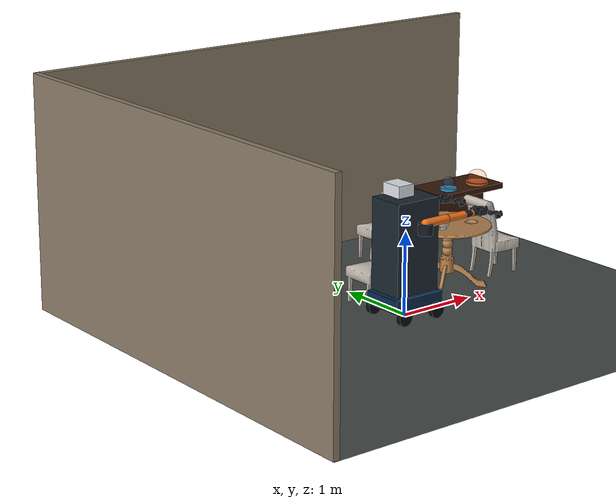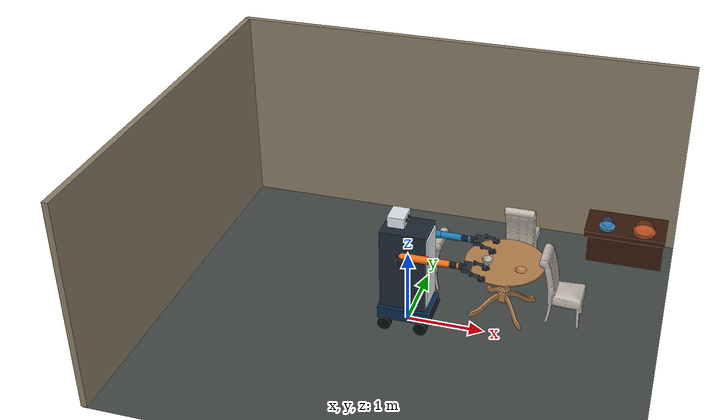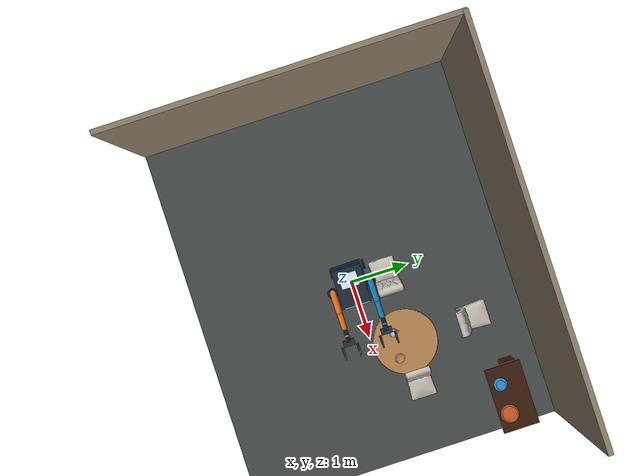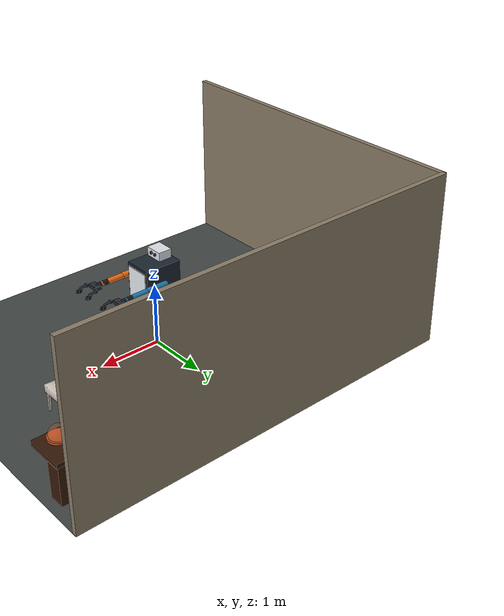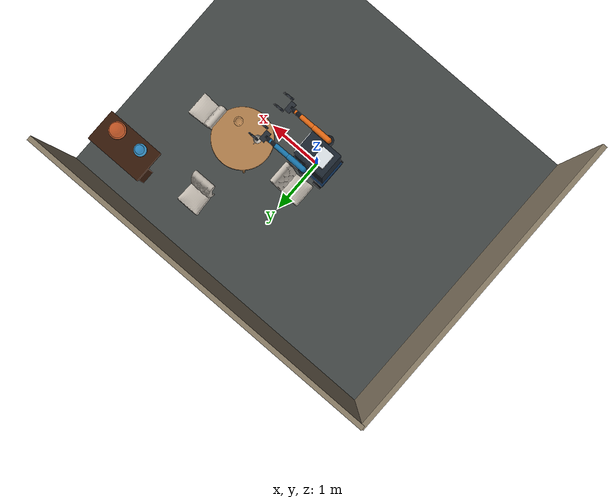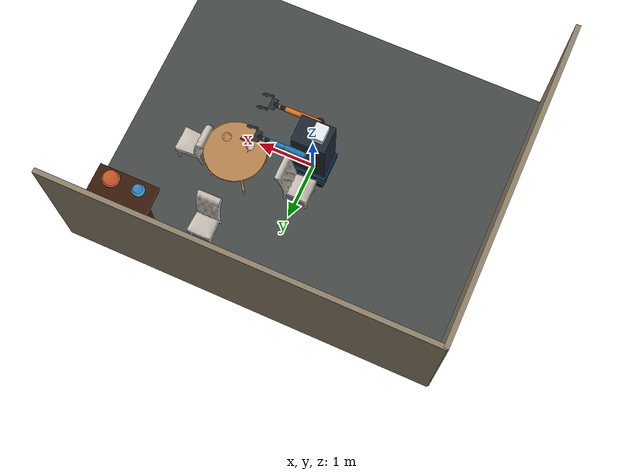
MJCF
<mujoco model="hwr_dining_room_v1">
  <compiler angle="radian" autolimits="true" inertiafromgeom="true" meshdir="../../household_v1" texturedir="../../household_v1"/>
  <option timestep="0.002" gravity="0 0 -9.81" integrator="implicitfast"><flag multiccd="enable"/></option>
  <size memory="128M"/>
  <visual>
    <global offwidth="960" offheight="640"/>
    <quality shadowsize="4096"/>
    <headlight ambient="0.18 0.18 0.17" diffuse="0.50 0.48 0.44" specular="0.20 0.20 0.20"/>
  </visual>
  <asset>
    <include file="../common/robot_assets.xml"/>
    <texture name="dining_floor_tex" type="2d" builtin="checker" width="1024" height="1024" rgb1="0.18 0.20 0.20" rgb2="0.34 0.36 0.35" mark="cross" markrgb="0.72 0.68 0.55"/>
    <texture name="dining_wall_tex" type="2d" builtin="gradient" width="512" height="512" rgb1="0.74 0.68 0.56" rgb2="0.35 0.30 0.25"/>
    <material name="dining_floor" texture="dining_floor_tex" texrepeat="14 11" reflectance="0.10" roughness="0.58"/>
    <material name="dining_wall" texture="dining_wall_tex" texrepeat="3 3" roughness="0.88"/>
    <material name="sideboard_mat" rgba="0.21 0.095 0.035 1" roughness="0.44"/>
    <material name="cup_target_mat" rgba="0.20 0.53 0.72 1" roughness="0.36"/>
    <material name="plate_target_mat" rgba="0.72 0.33 0.16 1" roughness="0.42"/>
    <mesh name="dining_table_mesh" file="dining_table/dining_table.obj"/>
    <texture name="dining_table_tex" type="2d" file="dining_table/round_wooden_table_01.png"/>
    <material name="dining_table_mat" texture="dining_table_tex" roughness="0.48"/>
    <mesh name="dining_chair_mesh" file="dining_chair/dining_chair.obj"/>
    <texture name="dining_chair_tex" type="2d" file="dining_chair/dining_chair_02.png"/>
    <material name="dining_chair_mat" texture="dining_chair_tex" roughness="0.66"/>
    <mesh name="dining_cup_mesh" file="dining_cup/dining_cup.obj"/>
    <texture name="dining_cup_tex" type="2d" file="dining_cup/tea_set_01.png"/>
    <material name="dining_cup_mat" texture="dining_cup_tex" roughness="0.20" specular="0.55"/>
    <mesh name="dining_plate_mesh" file="dining_plate/dining_plate.obj"/>
    <texture name="dining_plate_tex" type="2d" file="dining_plate/carved_wooden_plate.png"/>
    <material name="dining_plate_mat" texture="dining_plate_tex" roughness="0.60"/>
  </asset>
  <default><include file="../common/robot_defaults.xml"/></default>
  <worldbody>
    <geom name="floor" type="plane" size="3.2 2.7 0.1" material="dining_floor" friction="0.95 0.01 0.001"/>
    <geom name="wall_north" type="box" pos="0 2.68 1.4" size="3.2 0.04 1.4" material="dining_wall"/>
    <geom name="wall_west" type="box" pos="-3.18 0 1.4" size="0.04 2.7 1.4" material="dining_wall"/>
    <light name="dining_key" pos="0.7 -0.4 3.5" dir="-0.1 0.2 -1" directional="true" castshadow="true" diffuse="0.92 0.79 0.61"/>
    <light name="dining_fill" pos="-2.4 -1.7 2.1" dir="0.6 0.3 -0.5" directional="true" castshadow="true" diffuse="0.42 0.55 0.72"/>
    <light name="dining_pendant" pos="1.2 0.7 2.6" diffuse="0.72 0.55 0.35" castshadow="true"/>
    <camera name="third_person" pos="4.9 -5.0 3.6" xyaxes="0.715 0.699 0 -0.351 0.359 0.865" fovy="46"/>
    <camera name="room_overview" pos="0 0 6.2" xyaxes="1 0 0 0 1 0" fovy="54"/>
    <include file="../common/robot_body.xml"/>
    <body name="dining_table" pos="1.15 0.55 0">
      <geom name="dining_table_visual" type="mesh" mesh="dining_table_mesh" material="dining_table_mat" contype="0" conaffinity="0" group="1"/>
      <geom name="dining_table_top_collision" type="cylinder" pos="0 0 0.715" size="0.52 0.045" rgba="0 0 0 0" group="3"/>
      <geom name="dining_table_pedestal_collision" type="cylinder" pos="0 0 0.36" size="0.13 0.36" rgba="0 0 0 0" group="3"/>
      <geom name="dining_table_base_collision" type="cylinder" pos="0 0 0.07" size="0.36 0.07" rgba="0 0 0 0" group="3"/>
    </body>
    <body name="chair_west" pos="0.05 0.58 0" euler="0 0 -1.5708">
      <geom name="chair_west_visual" type="mesh" mesh="dining_chair_mesh" material="dining_chair_mat" contype="0" conaffinity="0" group="1"/>
      <geom name="chair_west_seat_collision" type="box" pos="0 0 0.47" size="0.20 0.22 0.035" rgba="0 0 0 0" group="3"/>
      <geom name="chair_west_back_collision" type="box" pos="0 0.24 0.73" size="0.20 0.035 0.25" rgba="0 0 0 0" group="3"/>
    </body>
    <body name="chair_north" pos="1.15 1.73 0" euler="0 0 3.14159">
      <geom name="chair_north_visual" type="mesh" mesh="dining_chair_mesh" material="dining_chair_mat" contype="0" conaffinity="0" group="1"/>
      <geom name="chair_north_seat_collision" type="box" pos="0 0 0.47" size="0.20 0.22 0.035" rgba="0 0 0 0" group="3"/>
      <geom name="chair_north_back_collision" type="box" pos="0 0.24 0.73" size="0.20 0.035 0.25" rgba="0 0 0 0" group="3"/>
    </body>
    <body name="chair_east" pos="1.90 0.58 0" euler="0 0 1.5708">
      <geom name="chair_east_visual" type="mesh" mesh="dining_chair_mesh" material="dining_chair_mat" contype="0" conaffinity="0" group="1"/>
      <geom name="chair_east_seat_collision" type="box" pos="0 0 0.47" size="0.20 0.22 0.035" rgba="0 0 0 0" group="3"/>
      <geom name="chair_east_back_collision" type="box" pos="0 0.24 0.73" size="0.20 0.035 0.25" rgba="0 0 0 0" group="3"/>
    </body>
    <body name="dining_cup" pos="0.94 0.42 0.765">
      <freejoint name="dining_cup_free"/>
      <geom name="dining_cup_visual" type="mesh" mesh="dining_cup_mesh" material="dining_cup_mat" mass="0" contype="0" conaffinity="0" group="1"/>
      <geom name="dining_cup_collision" type="cylinder" pos="0 0 0.043" size="0.047 0.043" mass="0.18" friction="1.25 0.02 0.002" rgba="0 0 0 0" group="3"/>
    </body>
    <body name="dining_plate" pos="1.38 0.38 0.762">
      <freejoint name="dining_plate_free"/>
      <geom name="dining_plate_visual" type="mesh" mesh="dining_plate_mesh" material="dining_plate_mat" mass="0" contype="0" conaffinity="0" group="1"/>
      <geom name="dining_plate_collision" type="cylinder" pos="0 0 0.011" size="0.075 0.011" mass="0.18" friction="1.05 0.02 0.002" rgba="0 0 0 0" group="3"/>
    </body>
    <body name="sideboard" pos="2.55 1.92 0">
      <geom name="sideboard_top" type="box" pos="0 0 0.67" size="0.54 0.30 0.035" material="sideboard_mat"/>
      <geom name="sideboard_body" type="box" pos="0 0.16 0.34" size="0.52 0.12 0.31" material="sideboard_mat"/>
      <geom name="cup_holder" type="cylinder" pos="-0.25 -0.12 0.715" size="0.11 0.025" material="cup_target_mat"/>
      <geom name="plate_holder" type="cylinder" pos="0.25 -0.12 0.715" size="0.15 0.025" material="plate_target_mat"/>
      <site name="cup_target_volume" pos="-0.25 -0.12 0.80" size="0.08 0.08 0.08" rgba="0.1 0.6 1 0.10"/>
      <site name="plate_target_volume" pos="0.25 -0.12 0.77" size="0.13 0.13 0.05" rgba="1 0.4 0.1 0.10"/>
    </body>
  </worldbody>
  <contact>
    <include file="../common/robot_contacts.xml"/>
    <pair geom1="right_gripper_left_pad" geom2="dining_cup_collision" condim="4" friction="3 3 0.04 0.004 0.004" solref="0.001 1" solimp="0.99 0.999 0.0001"/>
    <pair geom1="right_gripper_right_pad" geom2="dining_cup_collision" condim="4" friction="3 3 0.04 0.004 0.004" solref="0.001 1" solimp="0.99 0.999 0.0001"/>
    <pair geom1="right_gripper_left_pad" geom2="dining_plate_collision" condim="4" friction="3 3 0.04 0.004 0.004" solref="0.001 1" solimp="0.99 0.999 0.0001"/>
    <pair geom1="right_gripper_right_pad" geom2="dining_plate_collision" condim="4" friction="3 3 0.04 0.004 0.004" solref="0.001 1" solimp="0.99 0.999 0.0001"/>
  </contact>
  <actuator><include file="../common/robot_actuators.xml"/></actuator>
  <sensor><include file="../common/robot_sensors.xml"/></sensor>
</mujoco>

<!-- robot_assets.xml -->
<mujocoinclude>
  <material name="chassis_material" rgba="0.035 0.16 0.30 1" metallic="0.3" roughness="0.28"/>
  <material name="body_material" rgba="0.11 0.15 0.19 1" metallic="0.22" roughness="0.34"/>
  <material name="panel_material" rgba="0.92 0.94 0.96 1" metallic="0.08" roughness="0.28"/>
  <material name="arm_material" rgba="0.93 0.43 0.08 1" metallic="0.18" roughness="0.28"/>
  <material name="arm_secondary_material" rgba="0.10 0.48 0.70 1" metallic="0.18" roughness="0.28"/>
  <material name="joint_material" rgba="0.08 0.10 0.13 1" metallic="0.65" roughness="0.24"/>
  <material name="gripper_material" rgba="0.15 0.17 0.20 1" metallic="0.28" roughness="0.48"/>
  <material name="gripper_pad_material" rgba="0.035 0.045 0.055 1" metallic="0.02" roughness="0.86"/>
  <material name="wheel_material" rgba="0.035 0.04 0.05 1" metallic="0.05" roughness="0.72"/>
  <material name="camera_material" rgba="0.88 0.90 0.92 1" metallic="0.16" roughness="0.26"/>
  <material name="camera_lens_material" rgba="0.015 0.035 0.06 1" metallic="0.38" roughness="0.12"/>
</mujocoinclude>

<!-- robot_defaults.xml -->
<mujocoinclude>
  <joint damping="1.0" armature="0.02" frictionloss="0.05"/>
  <geom condim="4" friction="0.9 0.01 0.001" solref="0.006 1" solimp="0.9 0.95 0.001"/>
  <default class="arm_joint">
    <joint damping="2.0" armature="0.05"/>
  </default>
  <default class="finger_joint">
    <joint damping="3.0" armature="0.01"/>
  </default>
  <default class="finger_pad">
    <geom condim="4" friction="3.0 0.04 0.004" solref="0.004 1"/>
  </default>
</mujocoinclude>

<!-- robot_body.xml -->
<mujocoinclude>
  <body name="robot_base" pos="0 0 0.22">
    <freejoint name="base_free"/>
    <geom name="chassis_collision" type="box" size="0.34 0.26 0.08" density="400"
          material="chassis_material"/>
    <geom name="body_box_collision" type="box" pos="-0.01 0 0.65" size="0.30 0.23 0.55"
          density="65" material="body_material"/>
    <geom name="body_front_panel" type="box" pos="0.295 0 0.65" size="0.012 0.20 0.50"
          mass="0.05" contype="0" conaffinity="0" material="panel_material"/>
    <geom name="bumper_front" type="capsule" fromto="0.34 -0.21 0 0.34 0.21 0" size="0.035"
          density="300" material="joint_material"/>
    <site name="base_imu" pos="0 0 0.12" size="0.012" rgba="0 1 0 0"/>

    <body name="top_camera_head" pos="-0.12 0 1.31">
      <geom name="camera_head_pedestal" type="box" pos="0 0 -0.09" size="0.045 0.050 0.040"
            density="220" material="joint_material"/>
      <geom name="camera_head_housing" type="box" size="0.11 0.14 0.07" density="180"
            material="camera_material"/>
      <geom name="camera_rgb_lens" type="cylinder" pos="0.118 -0.045 0.01" size="0.026 0.012"
            quat="0.707107 0 0.707107 0" mass="0.02" contype="0" conaffinity="0"
            material="camera_lens_material"/>
      <geom name="camera_depth_lens" type="cylinder" pos="0.118 0.045 0.01" size="0.026 0.012"
            quat="0.707107 0 0.707107 0" mass="0.02" contype="0" conaffinity="0"
            material="camera_lens_material"/>
      <camera name="head_rgb" pos="0.13 -0.045 0.01" xyaxes="0 -1 0 0.16 0 0.987" fovy="66"/>
      <camera name="head_depth" pos="0.13 0.045 0.01" xyaxes="0 -1 0 0.16 0 0.987" fovy="66"/>
    </body>

    <body name="wheel_front_left" pos="0.24 0.27 -0.13">
      <joint name="wheel_front_left_joint" type="hinge" axis="0 1 0" limited="false" damping="0.15"/>
      <geom name="wheel_front_left_geom" type="cylinder" size="0.09 0.035"
            quat="0.707107 0.707107 0 0" density="450" material="wheel_material"
            friction="1.3 0.003 0.0002"/>
    </body>
    <body name="wheel_rear_left" pos="-0.24 0.27 -0.13">
      <joint name="wheel_rear_left_joint" type="hinge" axis="0 1 0" limited="false" damping="0.15"/>
      <geom name="wheel_rear_left_geom" type="cylinder" size="0.09 0.035"
            quat="0.707107 0.707107 0 0" density="450" material="wheel_material"
            friction="1.3 0.003 0.0002"/>
    </body>
    <body name="wheel_front_right" pos="0.24 -0.27 -0.13">
      <joint name="wheel_front_right_joint" type="hinge" axis="0 1 0" limited="false" damping="0.15"/>
      <geom name="wheel_front_right_geom" type="cylinder" size="0.09 0.035"
            quat="0.707107 0.707107 0 0" density="450" material="wheel_material"
            friction="1.3 0.003 0.0002"/>
    </body>
    <body name="wheel_rear_right" pos="-0.24 -0.27 -0.13">
      <joint name="wheel_rear_right_joint" type="hinge" axis="0 1 0" limited="false" damping="0.15"/>
      <geom name="wheel_rear_right_geom" type="cylinder" size="0.09 0.035"
            quat="0.707107 0.707107 0 0" density="450" material="wheel_material"
            friction="1.3 0.003 0.0002"/>
    </body>

    <body name="right_shoulder_pan_link" pos="0.02 -0.31 0.82" gravcomp="1">
      <joint name="right_arm_joint_1" class="arm_joint" type="hinge" axis="0 0 1" range="-3.05 3.05"/>
      <geom type="cylinder" size="0.085 0.065" pos="0 0 0.065" density="620" material="joint_material"/>
      <body name="right_upper_arm_link" pos="0 0 0.13" gravcomp="1">
        <joint name="right_arm_joint_2" class="arm_joint" type="hinge" axis="0 1 0" range="-1.75 1.45"/>
        <geom type="capsule" fromto="0 0 0 0.31 0 0" size="0.050" density="560" material="arm_material"/>
        <body name="right_forearm_link" pos="0.31 0 0" gravcomp="1">
          <joint name="right_arm_joint_3" class="arm_joint" type="hinge" axis="0 1 0" range="-2.55 2.55"/>
          <geom type="capsule" fromto="0 0 0 0.27 0 0" size="0.044" density="520" material="arm_material"/>
          <body name="right_wrist_roll_link" pos="0.27 0 0" gravcomp="1">
            <joint name="right_arm_joint_4" class="arm_joint" type="hinge" axis="1 0 0" range="-3.05 3.05"/>
            <geom type="capsule" fromto="0 0 0 0.09 0 0" size="0.040" density="500" material="joint_material"/>
            <body name="right_wrist_pitch_link" pos="0.09 0 0" gravcomp="1">
              <joint name="right_arm_joint_5" class="arm_joint" type="hinge" axis="0 1 0" range="-2.10 2.10"/>
              <geom type="capsule" fromto="0 0 0 0.08 0 0" size="0.037" density="480" material="arm_material"/>
              <body name="right_wrist_yaw_link" pos="0.08 0 0" gravcomp="1">
                <joint name="right_arm_joint_6" class="arm_joint" type="hinge" axis="1 0 0" range="-3.05 3.05"/>
                <geom type="cylinder" size="0.041 0.035" quat="0.707107 0 0.707107 0"
                      density="470" material="joint_material"/>
                <body name="right_gripper_palm" pos="0.065 0 0" gravcomp="1">
                  <geom name="right_gripper_palm_shell" type="box" size="0.050 0.090 0.026"
                        density="470" material="gripper_material"/>
                  <geom name="right_gripper_wrist_adapter" type="cylinder" pos="-0.035 0 0"
                        size="0.038 0.025" quat="0.707107 0 0.707107 0"
                        density="420" material="joint_material"/>
                  <camera name="wrist_rgb" pos="0.012 0 0.060" xyaxes="0 -1 0 0 0 1" fovy="72"/>
                  <site name="right_grasp_center" pos="0.190 0 -0.045" size="0.012" rgba="0 1 0 0"/>
                  <body name="right_gripper_left_finger" pos="0.070 0.122 -0.005" gravcomp="1">
                    <joint name="right_gripper_left_finger_joint" class="finger_joint" type="slide"
                           axis="0 -1 0" range="0 0.095"/>
                    <geom name="right_gripper_left_knuckle" type="cylinder" size="0.026 0.018"
                          quat="0.707107 0.707107 0 0" density="390"
                          material="joint_material"/>
                    <geom name="right_gripper_left_proximal" type="capsule"
                          fromto="0 0 0 0.100 0 -0.012" size="0.018" density="360"
                          material="gripper_material"/>
                    <geom name="right_gripper_left_distal" type="capsule"
                          fromto="0.100 0 -0.012 0.145 0 -0.047" size="0.016" density="340"
                          material="gripper_material"/>
                    <geom name="right_gripper_left_tip" type="capsule"
                          fromto="0.145 0 -0.047 0.145 0 -0.075" size="0.014" density="330"
                          material="gripper_material"/>
                    <geom name="right_gripper_left_pad" class="finger_pad" type="box"
                          size="0.045 0.012 0.030" pos="0.133 0 -0.045" euler="0 -0.30 0"
                          density="400" material="gripper_pad_material"/>
                  </body>
                  <body name="right_gripper_right_finger" pos="0.070 -0.122 -0.005" gravcomp="1">
                    <joint name="right_gripper_right_finger_joint" class="finger_joint" type="slide"
                           axis="0 1 0" range="0 0.095"/>
                    <geom name="right_gripper_right_knuckle" type="cylinder" size="0.026 0.018"
                          quat="0.707107 0.707107 0 0" density="390"
                          material="joint_material"/>
                    <geom name="right_gripper_right_proximal" type="capsule"
                          fromto="0 0 0 0.100 0 -0.012" size="0.018" density="360"
                          material="gripper_material"/>
                    <geom name="right_gripper_right_distal" type="capsule"
                          fromto="0.100 0 -0.012 0.145 0 -0.047" size="0.016" density="340"
                          material="gripper_material"/>
                    <geom name="right_gripper_right_tip" type="capsule"
                          fromto="0.145 0 -0.047 0.145 0 -0.075" size="0.014" density="330"
                          material="gripper_material"/>
                    <geom name="right_gripper_right_pad" class="finger_pad" type="box"
                          size="0.045 0.012 0.030" pos="0.133 0 -0.045" euler="0 -0.30 0"
                          density="400" material="gripper_pad_material"/>
                  </body>
                </body>
              </body>
            </body>
          </body>
        </body>
      </body>
    </body>

    <body name="left_shoulder_pan_link" pos="0.02 0.31 0.82" gravcomp="1">
      <joint name="left_arm_joint_1" class="arm_joint" type="hinge" axis="0 0 1" range="-3.05 3.05"/>
      <geom type="cylinder" size="0.085 0.065" pos="0 0 0.065" density="620" material="joint_material"/>
      <body name="left_upper_arm_link" pos="0 0 0.13" gravcomp="1">
        <joint name="left_arm_joint_2" class="arm_joint" type="hinge" axis="0 1 0" range="-1.75 1.45"/>
        <geom type="capsule" fromto="0 0 0 0.31 0 0" size="0.050" density="560" material="arm_secondary_material"/>
        <body name="left_forearm_link" pos="0.31 0 0" gravcomp="1">
          <joint name="left_arm_joint_3" class="arm_joint" type="hinge" axis="0 1 0" range="-2.55 2.55"/>
          <geom type="capsule" fromto="0 0 0 0.27 0 0" size="0.044" density="520" material="arm_secondary_material"/>
          <body name="left_wrist_roll_link" pos="0.27 0 0" gravcomp="1">
            <joint name="left_arm_joint_4" class="arm_joint" type="hinge" axis="1 0 0" range="-3.05 3.05"/>
            <geom type="capsule" fromto="0 0 0 0.09 0 0" size="0.040" density="500" material="joint_material"/>
            <body name="left_wrist_pitch_link" pos="0.09 0 0" gravcomp="1">
              <joint name="left_arm_joint_5" class="arm_joint" type="hinge" axis="0 1 0" range="-2.10 2.10"/>
              <geom type="capsule" fromto="0 0 0 0.08 0 0" size="0.037" density="480" material="arm_secondary_material"/>
              <body name="left_wrist_yaw_link" pos="0.08 0 0" gravcomp="1">
                <joint name="left_arm_joint_6" class="arm_joint" type="hinge" axis="1 0 0" range="-3.05 3.05"/>
                <geom type="cylinder" size="0.041 0.035" quat="0.707107 0 0.707107 0"
                      density="470" material="joint_material"/>
                <body name="left_gripper_palm" pos="0.065 0 0" gravcomp="1">
                  <geom name="left_gripper_palm_shell" type="box" size="0.050 0.090 0.026"
                        density="470" material="gripper_material"/>
                  <geom name="left_gripper_wrist_adapter" type="cylinder" pos="-0.035 0 0"
                        size="0.038 0.025" quat="0.707107 0 0.707107 0"
                        density="420" material="joint_material"/>
                  <camera name="left_wrist_rgb" pos="0.012 0 0.060" xyaxes="0 -1 0 0 0 1" fovy="72"/>
                  <site name="left_grasp_center" pos="0.190 0 -0.045" size="0.012" rgba="0 1 0 0"/>
                  <body name="left_gripper_left_finger" pos="0.070 0.122 -0.005" gravcomp="1">
                    <joint name="left_gripper_left_finger_joint" class="finger_joint" type="slide"
                           axis="0 -1 0" range="0 0.095"/>
                    <geom name="left_gripper_left_knuckle" type="cylinder" size="0.026 0.018"
                          quat="0.707107 0.707107 0 0" density="390"
                          material="joint_material"/>
                    <geom name="left_gripper_left_proximal" type="capsule"
                          fromto="0 0 0 0.100 0 -0.012" size="0.018" density="360"
                          material="gripper_material"/>
                    <geom name="left_gripper_left_distal" type="capsule"
                          fromto="0.100 0 -0.012 0.145 0 -0.047" size="0.016" density="340"
                          material="gripper_material"/>
                    <geom name="left_gripper_left_tip" type="capsule"
                          fromto="0.145 0 -0.047 0.145 0 -0.075" size="0.014" density="330"
                          material="gripper_material"/>
                    <geom name="left_gripper_left_pad" class="finger_pad" type="box"
                          size="0.045 0.012 0.030" pos="0.133 0 -0.045" euler="0 -0.30 0"
                          density="400" material="gripper_pad_material"/>
                  </body>
                  <body name="left_gripper_right_finger" pos="0.070 -0.122 -0.005" gravcomp="1">
                    <joint name="left_gripper_right_finger_joint" class="finger_joint" type="slide"
                           axis="0 1 0" range="0 0.095"/>
                    <geom name="left_gripper_right_knuckle" type="cylinder" size="0.026 0.018"
                          quat="0.707107 0.707107 0 0" density="390"
                          material="joint_material"/>
                    <geom name="left_gripper_right_proximal" type="capsule"
                          fromto="0 0 0 0.100 0 -0.012" size="0.018" density="360"
                          material="gripper_material"/>
                    <geom name="left_gripper_right_distal" type="capsule"
                          fromto="0.100 0 -0.012 0.145 0 -0.047" size="0.016" density="340"
                          material="gripper_material"/>
                    <geom name="left_gripper_right_tip" type="capsule"
                          fromto="0.145 0 -0.047 0.145 0 -0.075" size="0.014" density="330"
                          material="gripper_material"/>
                    <geom name="left_gripper_right_pad" class="finger_pad" type="box"
                          size="0.045 0.012 0.030" pos="0.133 0 -0.045" euler="0 -0.30 0"
                          density="400" material="gripper_pad_material"/>
                  </body>
                </body>
              </body>
            </body>
          </body>
        </body>
      </body>
    </body>
  </body>
</mujocoinclude>

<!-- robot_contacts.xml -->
<mujocoinclude>
  <exclude body1="robot_base" body2="right_shoulder_pan_link"/>
  <exclude body1="right_shoulder_pan_link" body2="right_upper_arm_link"/>
  <exclude body1="right_upper_arm_link" body2="right_forearm_link"/>
  <exclude body1="right_forearm_link" body2="right_wrist_roll_link"/>
  <exclude body1="right_wrist_roll_link" body2="right_wrist_pitch_link"/>
  <exclude body1="right_wrist_pitch_link" body2="right_wrist_yaw_link"/>
  <exclude body1="right_wrist_yaw_link" body2="right_gripper_palm"/>
  <exclude body1="right_gripper_palm" body2="right_gripper_left_finger"/>
  <exclude body1="right_gripper_palm" body2="right_gripper_right_finger"/>
  <exclude body1="robot_base" body2="left_shoulder_pan_link"/>
  <exclude body1="left_shoulder_pan_link" body2="left_upper_arm_link"/>
  <exclude body1="left_upper_arm_link" body2="left_forearm_link"/>
  <exclude body1="left_forearm_link" body2="left_wrist_roll_link"/>
  <exclude body1="left_wrist_roll_link" body2="left_wrist_pitch_link"/>
  <exclude body1="left_wrist_pitch_link" body2="left_wrist_yaw_link"/>
  <exclude body1="left_wrist_yaw_link" body2="left_gripper_palm"/>
  <exclude body1="left_gripper_palm" body2="left_gripper_left_finger"/>
  <exclude body1="left_gripper_palm" body2="left_gripper_right_finger"/>
</mujocoinclude>

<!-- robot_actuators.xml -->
<mujocoinclude>
  <velocity name="wheel_front_left_velocity" joint="wheel_front_left_joint" kv="18" forcerange="-30 30"/>
  <velocity name="wheel_rear_left_velocity" joint="wheel_rear_left_joint" kv="18" forcerange="-30 30"/>
  <velocity name="wheel_front_right_velocity" joint="wheel_front_right_joint" kv="18" forcerange="-30 30"/>
  <velocity name="wheel_rear_right_velocity" joint="wheel_rear_right_joint" kv="18" forcerange="-30 30"/>
  <position name="right_arm_joint_1_position" joint="right_arm_joint_1" kp="180" kv="24" forcerange="-75 75"/>
  <position name="right_arm_joint_2_position" joint="right_arm_joint_2" kp="180" kv="24" forcerange="-75 75"/>
  <position name="right_arm_joint_3_position" joint="right_arm_joint_3" kp="160" kv="20" forcerange="-60 60"/>
  <position name="right_arm_joint_4_position" joint="right_arm_joint_4" kp="100" kv="14" forcerange="-35 35"/>
  <position name="right_arm_joint_5_position" joint="right_arm_joint_5" kp="90" kv="12" forcerange="-30 30"/>
  <position name="right_arm_joint_6_position" joint="right_arm_joint_6" kp="70" kv="10" forcerange="-22 22"/>
  <position name="left_arm_joint_1_position" joint="left_arm_joint_1" kp="180" kv="24" forcerange="-75 75"/>
  <position name="left_arm_joint_2_position" joint="left_arm_joint_2" kp="180" kv="24" forcerange="-75 75"/>
  <position name="left_arm_joint_3_position" joint="left_arm_joint_3" kp="160" kv="20" forcerange="-60 60"/>
  <position name="left_arm_joint_4_position" joint="left_arm_joint_4" kp="100" kv="14" forcerange="-35 35"/>
  <position name="left_arm_joint_5_position" joint="left_arm_joint_5" kp="90" kv="12" forcerange="-30 30"/>
  <position name="left_arm_joint_6_position" joint="left_arm_joint_6" kp="70" kv="10" forcerange="-22 22"/>
  <position name="right_gripper_left_finger_position" joint="right_gripper_left_finger_joint"
            kp="260" kv="14" forcerange="-35 35"/>
  <position name="right_gripper_right_finger_position" joint="right_gripper_right_finger_joint"
            kp="260" kv="14" forcerange="-35 35"/>
  <position name="left_gripper_left_finger_position" joint="left_gripper_left_finger_joint"
            kp="260" kv="14" forcerange="-35 35"/>
  <position name="left_gripper_right_finger_position" joint="left_gripper_right_finger_joint"
            kp="260" kv="14" forcerange="-35 35"/>
</mujocoinclude>

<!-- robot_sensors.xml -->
<mujocoinclude>
  <gyro name="base_gyro" site="base_imu"/>
  <accelerometer name="base_accelerometer" site="base_imu"/>
</mujocoinclude>
